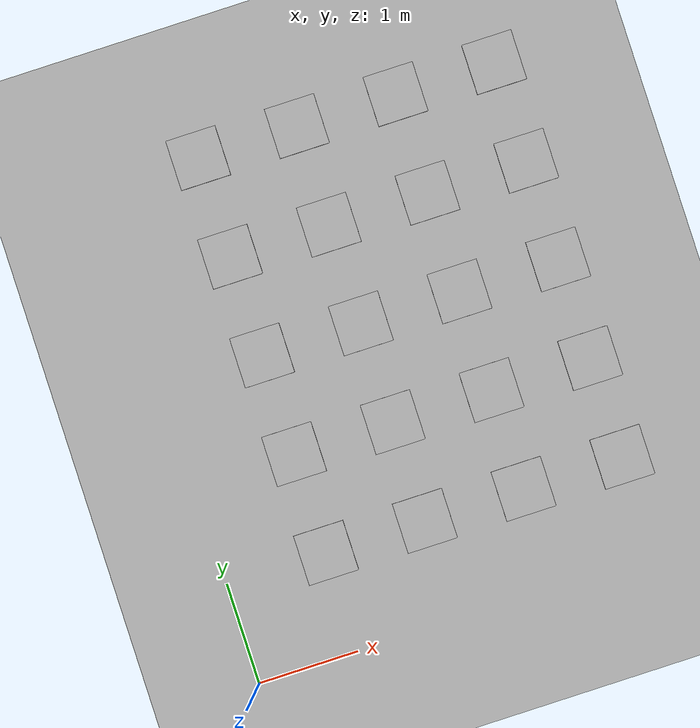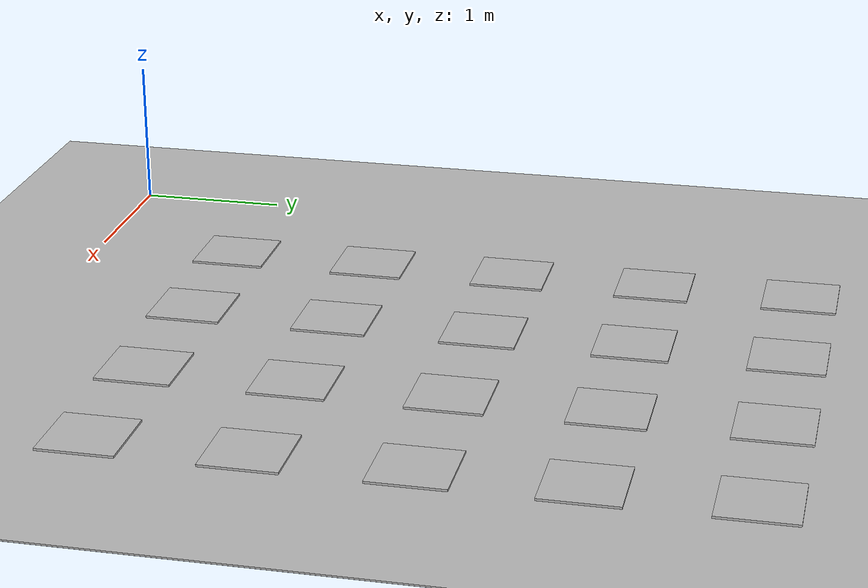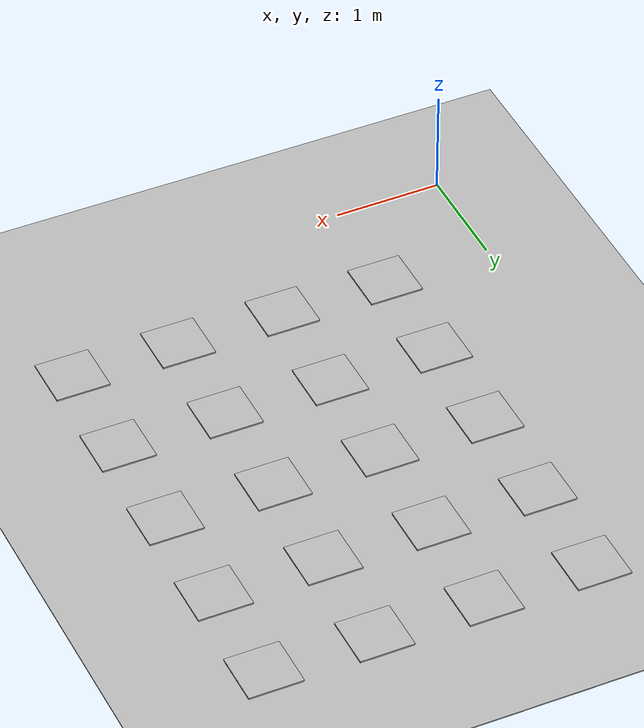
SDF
<?xml version="1.0" ?>
<sdf version="1.9">
  <world name="aruco_6X6_250">
    <physics type="ode">
      <max_step_size>0.004</max_step_size>
      <real_time_factor>1.0</real_time_factor>
      <real_time_update_rate>250</real_time_update_rate>
    </physics>
    <plugin name="gz::sim::systems::Physics" filename="gz-sim-physics-system"/>
    <plugin name="gz::sim::systems::UserCommands" filename="gz-sim-user-commands-system"/>
    <plugin name="gz::sim::systems::SceneBroadcaster" filename="gz-sim-scene-broadcaster-system"/>
    <plugin name="gz::sim::systems::Contact" filename="gz-sim-contact-system"/>
    <plugin name="gz::sim::systems::Imu" filename="gz-sim-imu-system"/>
    <plugin name="gz::sim::systems::AirPressure" filename="gz-sim-air-pressure-system"/>
    <plugin name="gz::sim::systems::ApplyLinkWrench" filename="gz-sim-apply-link-wrench-system"/>
    <plugin name="gz::sim::systems::NavSat" filename="gz-sim-navsat-system"/>
    <plugin name="gz::sim::systems::Sensors" filename="gz-sim-sensors-system">
      <render_engine>ogre2</render_engine>
    </plugin>
   <light type="directional" name="sun">
      <cast_shadows>false</cast_shadows>
      <pose>0 0 100 0 0 0</pose>
      <diffuse>0.8 0.8 0.8 1</diffuse>
      <specular>0.9 0.9 0.9 1</specular>
      <attenuation>
        <range>1000</range>
        <constant>0.9</constant>
        <linear>0.01</linear>
        <quadratic>0.001</quadratic>
      </attenuation>
      <direction>0.2 0.2 -0.9</direction>
    </light>

    <scene>
      <shadows>0</shadows>
    </scene>

    <!-- 装饰 -->
    <model name='texture'>
      <static>true</static>
      <link name="prometheus_logo">
        <pose> 0.0 0.0 0.0 0.0 0.0 0.0</pose>
        <visual name="visual">
            <cast_shadows>false</cast_shadows>
            <geometry>
              <box>
                <size>15.0 15.0 0.01</size>
              </box>
            </geometry>
            <material>
              <script>
                <uri>file:///home/ubuntu/Prometheus/Simulator/gazebo_simulator/gazebo_models/texture/prometheus_texture/texture.material</uri>
                <name>prometheus_logo2</name>
              </script>
            </material>
        </visual>
      </link>
    </model>

    <!-- A ground plane (inline to avoid external model dependency) -->
    <model name="ground_plane">
      <static>true</static>
      <link name="link">
        <collision name="collision">
          <geometry>
            <plane>
              <normal>0 0 1</normal>
              <size>100 100</size>
            </plane>
          </geometry>
        </collision>
        <visual name="visual">
          <geometry>
            <plane>
              <normal>0 0 1</normal>
              <size>100 100</size>
            </plane>
          </geometry>
          <material>
            <ambient>0.8 0.8 0.8 1</ambient>
            <diffuse>0.8 0.8 0.8 1</diffuse>
            <specular>0.8 0.8 0.8 1</specular>
          </material>
        </visual>
      </link>
    </model>

    <!-- 初始视角 -->
    <gui fullscreen='0'>
      <camera name='user_camera'>
        <pose>10.0 -11 22.0 0 1.0 1.55</pose>
        <view_controller>orbit</view_controller>
      </camera>
    </gui>

    <!-- 搜索目标：1-20 6X6_250 aruco -->
    <!-- 对应的dictionary_type为10 -->
    <model name='aruco'>
      <static>true</static>
      <link name="aruco_1">
        <pose> 1.0 1.0 0.01 0.0 0.0 0.0</pose>
        <visual name="visual">
            <cast_shadows>false</cast_shadows>
            <geometry>
              <box>
                <size>0.5 0.5 0.02</size>
              </box>
            </geometry>
            <material>
              <script>
                <uri>file:///home/ubuntu/Prometheus/Simulator/gazebo_simulator/gazebo_models/texture/texture_aruco/texture.material</uri>
                <name>aruco_1</name>
              </script>
            </material>
        </visual>
      </link>
      <link name="aruco_2">
        <pose> 1.0 2.0 0.01 0.0 0.0 0.0</pose>
        <visual name="visual">
            <cast_shadows>false</cast_shadows>
            <geometry>
              <box>
                <size>0.5 0.5 0.02</size>
              </box>
            </geometry>
            <material>
              <script>
                <uri>file:///home/ubuntu/Prometheus/Simulator/gazebo_simulator/gazebo_models/texture/texture_aruco/texture.material</uri>
                <name>aruco_2</name>
              </script>
            </material>
        </visual>
      </link>
      <link name="aruco_3">
        <pose> 1.0 3.0 0.01 0.0 0.0 0.0</pose>
        <visual name="visual">
            <cast_shadows>false</cast_shadows>
            <geometry>
              <box>
                <size>0.5 0.5 0.02</size>
              </box>
            </geometry>
            <material>
              <script>
                <uri>file:///home/ubuntu/Prometheus/Simulator/gazebo_simulator/gazebo_models/texture/texture_aruco/texture.material</uri>
                <name>aruco_3</name>
              </script>
            </material>
        </visual>
      </link>
      <link name="aruco_4">
        <pose> 1.0 4.0 0.01 0.0 0.0 0.0</pose>
        <visual name="visual">
            <cast_shadows>false</cast_shadows>
            <geometry>
              <box>
                <size>0.5 0.5 0.02</size>
              </box>
            </geometry>
            <material>
              <script>
                <uri>file:///home/ubuntu/Prometheus/Simulator/gazebo_simulator/gazebo_models/texture/texture_aruco/texture.material</uri>
                <name>aruco_4</name>
              </script>
            </material>
        </visual>
      </link>
      <link name="aruco_5">
        <pose> 1.0 5.0 0.01 0.0 0.0 0.0</pose>
        <visual name="visual">
            <cast_shadows>false</cast_shadows>
            <geometry>
              <box>
                <size>0.5 0.5 0.02</size>
              </box>
            </geometry>
            <material>
              <script>
                <uri>file:///home/ubuntu/Prometheus/Simulator/gazebo_simulator/gazebo_models/texture/texture_aruco/texture.material</uri>
                <name>aruco_5</name>
              </script>
            </material>
        </visual>
      </link>
      <link name="aruco_6">
        <pose> 2.0 1.0 0.01 0.0 0.0 0.0</pose>
        <visual name="visual">
            <cast_shadows>false</cast_shadows>
            <geometry>
              <box>
                <size>0.5 0.5 0.02</size>
              </box>
            </geometry>
            <material>
              <script>
                <uri>file:///home/ubuntu/Prometheus/Simulator/gazebo_simulator/gazebo_models/texture/texture_aruco/texture.material</uri>
                <name>aruco_6</name>
              </script>
            </material>
        </visual>
      </link>
      <link name="aruco_7">
        <pose> 2.0 2.0 0.01 0.0 0.0 0.0</pose>
        <visual name="visual">
            <cast_shadows>false</cast_shadows>
            <geometry>
              <box>
                <size>0.5 0.5 0.02</size>
              </box>
            </geometry>
            <material>
              <script>
                <uri>file:///home/ubuntu/Prometheus/Simulator/gazebo_simulator/gazebo_models/texture/texture_aruco/texture.material</uri>
                <name>aruco_7</name>
              </script>
            </material>
        </visual>
      </link>
      <link name="aruco_8">
        <pose> 2.0 3.0 0.01 0.0 0.0 0.0</pose>
        <visual name="visual">
            <cast_shadows>false</cast_shadows>
            <geometry>
              <box>
                <size>0.5 0.5 0.02</size>
              </box>
            </geometry>
            <material>
              <script>
                <uri>file:///home/ubuntu/Prometheus/Simulator/gazebo_simulator/gazebo_models/texture/texture_aruco/texture.material</uri>
                <name>aruco_8</name>
              </script>
            </material>
        </visual>
      </link>
      <link name="aruco_9">
        <pose> 2.0 4.0 0.01 0.0 0.0 0.0</pose>
        <visual name="visual">
            <cast_shadows>false</cast_shadows>
            <geometry>
              <box>
                <size>0.5 0.5 0.02</size>
              </box>
            </geometry>
            <material>
              <script>
                <uri>file:///home/ubuntu/Prometheus/Simulator/gazebo_simulator/gazebo_models/texture/texture_aruco/texture.material</uri>
                <name>aruco_9</name>
              </script>
            </material>
        </visual>
      </link>
      <link name="aruco_10">
        <pose> 2.0 5.0 0.01 0.0 0.0 0.0</pose>
        <visual name="visual">
            <cast_shadows>false</cast_shadows>
            <geometry>
              <box>
                <size>0.5 0.5 0.02</size>
              </box>
            </geometry>
            <material>
              <script>
                <uri>file:///home/ubuntu/Prometheus/Simulator/gazebo_simulator/gazebo_models/texture/texture_aruco/texture.material</uri>
                <name>aruco_9</name>
              </script>
            </material>
        </visual>
      </link>
      <link name="aruco_11">
        <pose> 3.0 1.0 0.01 0.0 0.0 0.0</pose>
        <visual name="visual">
            <cast_shadows>false</cast_shadows>
            <geometry>
              <box>
                <size>0.5 0.5 0.02</size>
              </box>
            </geometry>
            <material>
              <script>
                <uri>file:///home/ubuntu/Prometheus/Simulator/gazebo_simulator/gazebo_models/texture/texture_aruco/texture.material</uri>
                <name>aruco_11</name>
              </script>
            </material>
        </visual>
      </link>
      <link name="aruco_12">
        <pose> 3.0 2.0 0.01 0.0 0.0 0.0</pose>
        <visual name="visual">
            <cast_shadows>false</cast_shadows>
            <geometry>
              <box>
                <size>0.5 0.5 0.02</size>
              </box>
            </geometry>
            <material>
              <script>
                <uri>file:///home/ubuntu/Prometheus/Simulator/gazebo_simulator/gazebo_models/texture/texture_aruco/texture.material</uri>
                <name>aruco_12</name>
              </script>
            </material>
        </visual>
      </link>
      <link name="aruco_13">
        <pose> 3.0 3.0 0.01 0.0 0.0 0.0</pose>
        <visual name="visual">
            <cast_shadows>false</cast_shadows>
            <geometry>
              <box>
                <size>0.5 0.5 0.02</size>
              </box>
            </geometry>
            <material>
              <script>
                <uri>file:///home/ubuntu/Prometheus/Simulator/gazebo_simulator/gazebo_models/texture/texture_aruco/texture.material</uri>
                <name>aruco_13</name>
              </script>
            </material>
        </visual>
      </link>
      <link name="aruco_14">
        <pose> 3.0 4.0 0.01 0.0 0.0 0.0</pose>
        <visual name="visual">
            <cast_shadows>false</cast_shadows>
            <geometry>
              <box>
                <size>0.5 0.5 0.02</size>
              </box>
            </geometry>
            <material>
              <script>
                <uri>file:///home/ubuntu/Prometheus/Simulator/gazebo_simulator/gazebo_models/texture/texture_aruco/texture.material</uri>
                <name>aruco_14</name>
              </script>
            </material>
        </visual>
      </link>
      <link name="aruco_15">
        <pose> 3.0 5.0 0.01 0.0 0.0 0.0</pose>
        <visual name="visual">
            <cast_shadows>false</cast_shadows>
            <geometry>
              <box>
                <size>0.5 0.5 0.02</size>
              </box>
            </geometry>
            <material>
              <script>
                <uri>file:///home/ubuntu/Prometheus/Simulator/gazebo_simulator/gazebo_models/texture/texture_aruco/texture.material</uri>
                <name>aruco_15</name>
              </script>
            </material>
        </visual>
      </link>
      <link name="aruco_16">
        <pose> 4.0 1.0 0.01 0.0 0.0 0.0</pose>
        <visual name="visual">
            <cast_shadows>false</cast_shadows>
            <geometry>
              <box>
                <size>0.5 0.5 0.02</size>
              </box>
            </geometry>
            <material>
              <script>
                <uri>file:///home/ubuntu/Prometheus/Simulator/gazebo_simulator/gazebo_models/texture/texture_aruco/texture.material</uri>
                <name>aruco_16</name>
              </script>
            </material>
        </visual>
      </link>
      <link name="aruco_17">
        <pose> 4.0 2.0 0.01 0.0 0.0 0.0</pose>
        <visual name="visual">
            <cast_shadows>false</cast_shadows>
            <geometry>
              <box>
                <size>0.5 0.5 0.02</size>
              </box>
            </geometry>
            <material>
              <script>
                <uri>file:///home/ubuntu/Prometheus/Simulator/gazebo_simulator/gazebo_models/texture/texture_aruco/texture.material</uri>
                <name>aruco_17</name>
              </script>
            </material>
        </visual>
      </link>
      <link name="aruco_18">
        <pose> 4.0 3.0 0.01 0.0 0.0 0.0</pose>
        <visual name="visual">
            <cast_shadows>false</cast_shadows>
            <geometry>
              <box>
                <size>0.5 0.5 0.02</size>
              </box>
            </geometry>
            <material>
              <script>
                <uri>file:///home/ubuntu/Prometheus/Simulator/gazebo_simulator/gazebo_models/texture/texture_aruco/texture.material</uri>
                <name>aruco_18</name>
              </script>
            </material>
        </visual>
      </link>
      <link name="aruco_19">
        <pose> 4.0 4.0 0.01 0.0 0.0 0.0</pose>
        <visual name="visual">
            <cast_shadows>false</cast_shadows>
            <geometry>
              <box>
                <size>0.5 0.5 0.02</size>
              </box>
            </geometry>
            <material>
              <script>
                <uri>file:///home/ubuntu/Prometheus/Simulator/gazebo_simulator/gazebo_models/texture/texture_aruco/texture.material</uri>
                <name>aruco_19</name>
              </script>
            </material>
        </visual>
      </link>
      <link name="aruco_20">
        <pose> 4.0 5.0 0.01 0.0 0.0 0.0</pose>
        <visual name="visual">
            <cast_shadows>false</cast_shadows>
            <geometry>
              <box>
                <size>0.5 0.5 0.02</size>
              </box>
            </geometry>
            <material>
              <script>
                <uri>file:///home/ubuntu/Prometheus/Simulator/gazebo_simulator/gazebo_models/texture/texture_aruco/texture.material</uri>
                <name>aruco_20</name>
              </script>
            </material>
        </visual>
      </link>

    </model>

  </world>
</sdf>
